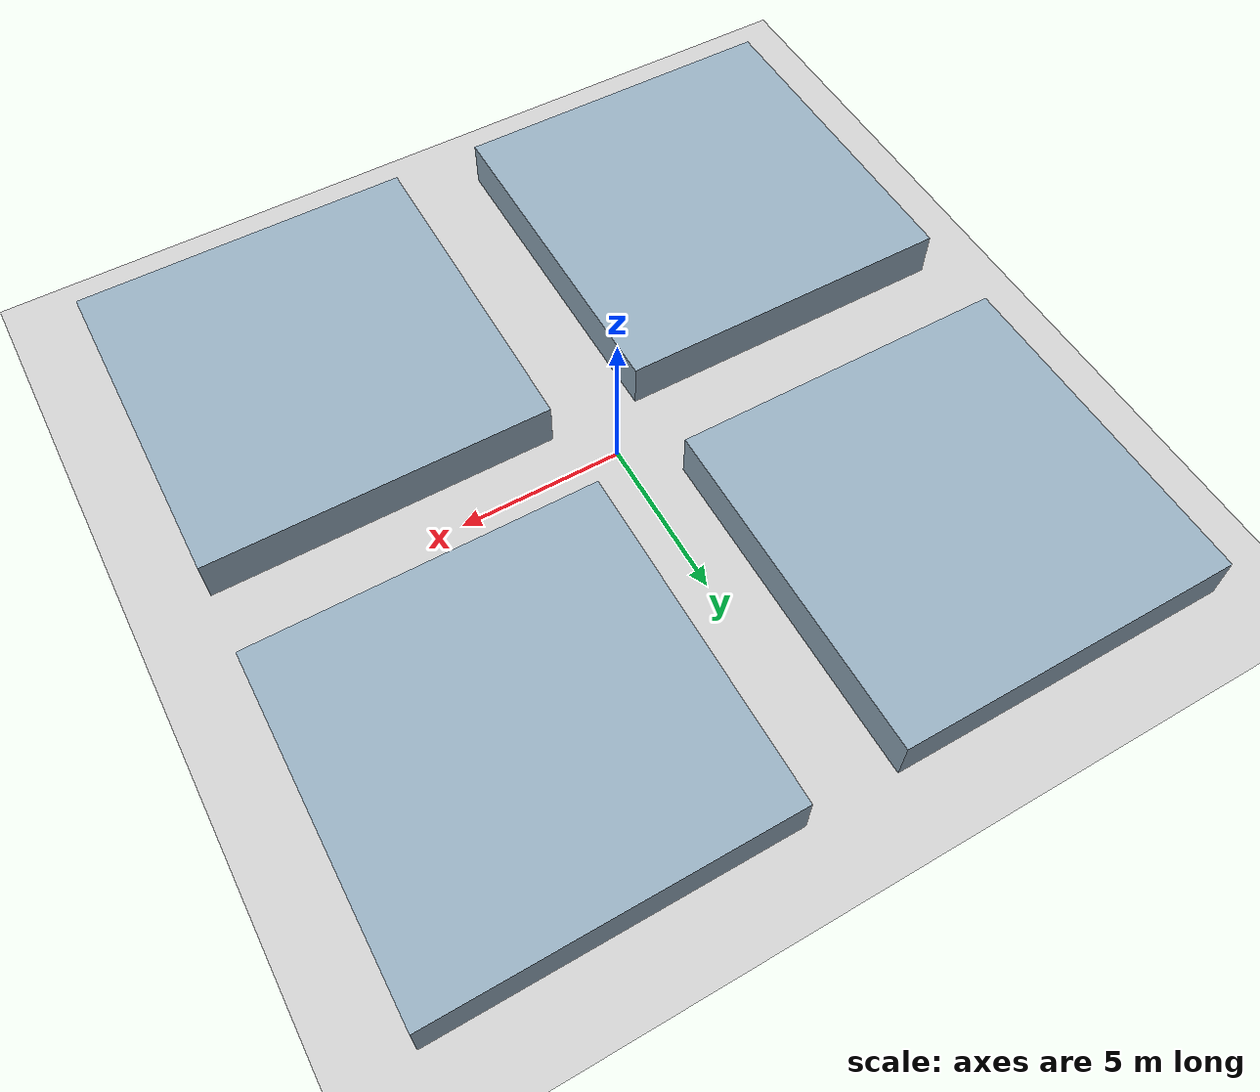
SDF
<?xml version='1.0' encoding='utf-8'?>
<sdf version="1.6">
  <world name="default">
    <gui fullscreen="false">
      <camera name="user_camera">
        <pose>7.770530 -11.140347 18.850718 0 1.011644 2.348196</pose>
        <view_controller>orbit</view_controller>
      </camera>
    </gui>
    <include>
      <uri>model://ground_plane</uri>
    </include>
    <include>
      <uri>model://sun</uri>
    </include>
    <plugin name="gazebo_ros_state" filename="libgazebo_ros_state.so">
      <ros>
        <namespace>/gazebo</namespace>
      </ros>
      <update_rate>20.0</update_rate>
    </plugin>
    <model name="shelf_NE">
      <static>true</static>
      <pose>6.7 6.7 0 0 0 0</pose>
      <link name="shelf_link">
        <collision name="shelf_collision">
          <pose>0 0 0.75 0 0 0</pose>
          <geometry>
            <box>
              <size>10.6 10.6 1.5</size>
            </box>
          </geometry>
        </collision>
        <visual name="shelf_visual">
          <pose>0 0 0.75 0 0 0</pose>
          <geometry>
            <box>
              <size>10.6 10.6 1.5</size>
            </box>
          </geometry>
          <material>
            <ambient>0.45 0.53 0.60 1</ambient>
            <diffuse>0.58 0.67 0.74 1</diffuse>
          </material>
        </visual>
      </link>
    </model>
    <model name="shelf_NW">
      <static>true</static>
      <pose>-6.7 6.7 0 0 0 0</pose>
      <link name="shelf_link">
        <collision name="shelf_collision">
          <pose>0 0 0.75 0 0 0</pose>
          <geometry>
            <box>
              <size>10.6 10.6 1.5</size>
            </box>
          </geometry>
        </collision>
        <visual name="shelf_visual">
          <pose>0 0 0.75 0 0 0</pose>
          <geometry>
            <box>
              <size>10.6 10.6 1.5</size>
            </box>
          </geometry>
          <material>
            <ambient>0.45 0.53 0.60 1</ambient>
            <diffuse>0.58 0.67 0.74 1</diffuse>
          </material>
        </visual>
      </link>
    </model>
    <model name="shelf_SE">
      <static>true</static>
      <pose>6.7 -6.7 0 0 0 0</pose>
      <link name="shelf_link">
        <collision name="shelf_collision">
          <pose>0 0 0.75 0 0 0</pose>
          <geometry>
            <box>
              <size>10.6 10.6 1.5</size>
            </box>
          </geometry>
        </collision>
        <visual name="shelf_visual">
          <pose>0 0 0.75 0 0 0</pose>
          <geometry>
            <box>
              <size>10.6 10.6 1.5</size>
            </box>
          </geometry>
          <material>
            <ambient>0.45 0.53 0.60 1</ambient>
            <diffuse>0.58 0.67 0.74 1</diffuse>
          </material>
        </visual>
      </link>
    </model>
    <model name="shelf_SW">
      <static>true</static>
      <pose>-6.7 -6.7 0 0 0 0</pose>
      <link name="shelf_link">
        <collision name="shelf_collision">
          <pose>0 0 0.75 0 0 0</pose>
          <geometry>
            <box>
              <size>10.6 10.6 1.5</size>
            </box>
          </geometry>
        </collision>
        <visual name="shelf_visual">
          <pose>0 0 0.75 0 0 0</pose>
          <geometry>
            <box>
              <size>10.6 10.6 1.5</size>
            </box>
          </geometry>
          <material>
            <ambient>0.45 0.53 0.60 1</ambient>
            <diffuse>0.58 0.67 0.74 1</diffuse>
          </material>
        </visual>
      </link>
    </model>
  </world>
</sdf>
